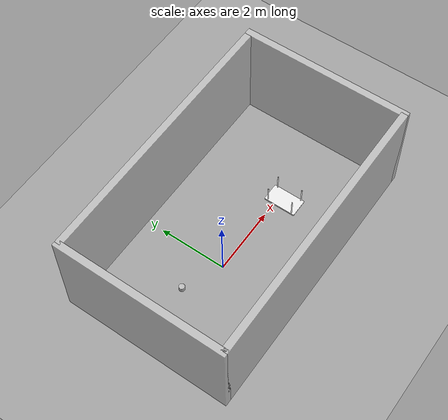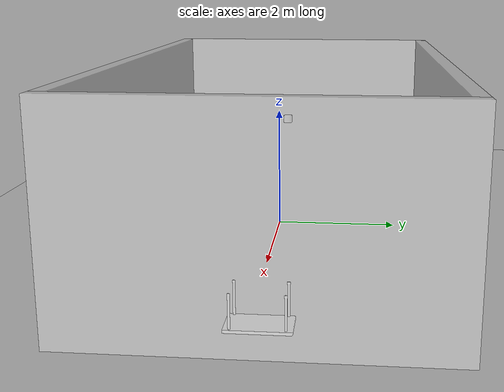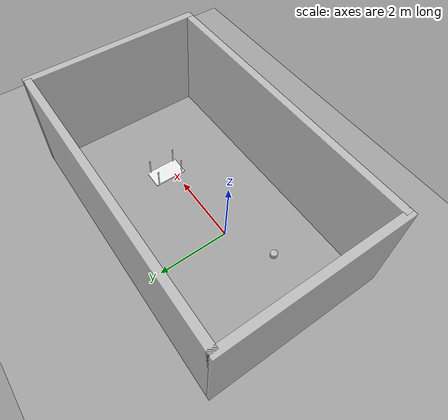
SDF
<sdf version="1.6">
 <world name="empty">
  <physics name="1ms" type="ignored">
   <max_step_size>0.001</max_step_size>
   <real_time_factor>1.0</real_time_factor>
  </physics>
  <plugin filename="gz-sim-physics-system" name="gz::sim::systems::Physics"/>
  <plugin filename="gz-sim-user-commands-system" name="gz::sim::systems::UserCommands"/>
  <plugin filename="gz-sim-scene-broadcaster-system" name="gz::sim::systems::SceneBroadcaster"/>
  <plugin filename="gz-sim-contact-system" name="gz::sim::systems::Contact"/>
  <plugin filename="libgz-sim-sensors-system.so" name="gz::sim::systems::Sensors">
   <render_engine>ogre2</render_engine>
  </plugin>
  <include><name>ground_plane</name><uri>gp_models/ground.sdf</uri></include>
  <include><name>light_model</name><uri>gp_models/light_model.sdf</uri></include>
  <include><name>lidar_module</name><uri>gp_models/lidar_module.sdf</uri><pose>-1.7 0 1.5 0 0 0</pose></include>
  <include><name>table_1</name><uri>gp_models/reflective_table/table.sdf</uri><pose>3 0 0 0 0 0</pose></include>
  <include><name>walls</name><uri>gp_models/walls.sdf</uri><pose>1 0.2 1.5 0 0 0</pose></include>
 </world>
</sdf>

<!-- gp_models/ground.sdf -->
<sdf version="1.6">
	<model name="ground_plane">
		<static>true</static>
		<link name="link">
			<collision name="collision">
				<geometry>
					<plane>
						<normal>0 0 1</normal>
						<size>100 100</size>
					</plane>
				</geometry>
			</collision>
			<visual name="visual">
				<geometry>
					<plane>
						<normal>0 0 1</normal>
						<size>100 100</size>
					</plane>
				</geometry>
					<material>
						<ambient>0.8 0.8 0.8 1</ambient>
						<diffuse>0.8 0.8 0.8 1</diffuse>
						<specular>0.8 0.8 0.8 1</specular>
					</material>
			</visual>
		</link>
	</model>
</sdf>

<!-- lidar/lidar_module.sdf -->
<sdf version="1.6">
	<model name="lidar_module">
		<static>true</static>
		<link name="lidar_frame">
			<sensor name='gpu_lidar' type='gpu_lidar'>
				<pose>0 0 0 0 0 0</pose>
				<topic>lidar</topic>
				<update_rate>10</update_rate>
				<ray>
					<scan>
						<horizontal>
						    <samples>1024</samples>
						    <min_angle>0.0</min_angle>
						    <max_angle>6.2831</max_angle>
						</horizontal>
						<vertical>
						    <samples>64</samples>
						    <min_angle>-0.2897</min_angle>
						    <max_angle>0.2897</max_angle>
						</vertical>
					</scan>
					<range>
						<min>0.08</min>
						<max>100</max>
					</range>
					<noise>
						<type>gaussian</type>
						<mean>0.0</mean>
						<stddev>0.03</stddev>
					 </noise>
				</ray>
				<always_on>1</always_on>
				<visualize>true</visualize>
			</sensor>
			<visual name="lidar_visual">
				<geometry>
					<mesh>
				 		<uri>lidar_3d_v2.dae</uri>
				 	</mesh>
				 </geometry>
			</visual>
		</link>
	</model>
</sdf>

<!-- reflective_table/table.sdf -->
<sdf version="1.6">
    <model name="reflective_table">
        <static>true</static>
        <link name="link">
            <pose>0 0 0 0 3.14 0</pose>
            <collision name="collision">
                <geometry>
                    <mesh>
                        <scale>0.5 0.5 0.5</scale>
                        <uri>meshes/Table.dae</uri>
                    </mesh>
                </geometry>
            </collision>
            <visual name="visual">
                <geometry>
                    <mesh>
                        <scale>0.5 0.5 0.5</scale>
                        <uri>meshes/Table.dae</uri>
                    </mesh>
                </geometry>
                <material>
                    <diffuse>1.0 1.0 1.0</diffuse>
                    <specular>1.0 1.0 1.0</specular>
                    <pbr>
                        <metal>
                            <albedo_map>materials/textures/Table_Table_BaseColor.png</albedo_map>
                            <normal_map>materials/textures/Table_Table_Normal.png</normal_map>
                            <roughness_map>materials/textures/Table_Roughness.png</roughness_map>
                            <environment_map>materials/textures/DepotEnvMap.dds</environment_map>
                            <metalness>0.1</metalness>
                        </metal>
                    </pbr>
                </material>
            </visual>
        </link>
    </model>
</sdf>

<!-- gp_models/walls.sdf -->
<sdf version="1.6">
	<model name="walls">
		<static>true</static>
		<pose>0 0 1.5 0 0 0</pose>
		<link name="north_wall">
			<pose>4 0 0 0 0 0</pose>
			<collision name="collision">
				<geometry>
					<box>
            			<size>0.2 5 3</size>
          			</box>
				</geometry>
			</collision>
			<visual name="visual">
				<geometry>
					<box>
            			<size>0.2 5 3</size>
          			</box>
				</geometry>
					<material>
						<ambient>0.8 0.8 0.8 1</ambient>
						<diffuse>0.8 0.8 0.8 1</diffuse>
						<specular>0.8 0.8 0.8 1</specular>
					</material>
					<transparency>0.2</transparency>
			</visual>
		</link>
		<link name="south_wall">
			<pose>-4 0 0 0 0 0</pose>
			<collision name="collision">
				<geometry>
					<box>
            			<size>0.2 5 3</size>
          			</box>
				</geometry>
			</collision>
			<visual name="visual">
				<geometry>
					<box>
            			<size>0.2 5 3</size>
          			</box>
				</geometry>
					<material>
						<ambient>0.8 0.8 0.8 1</ambient>
						<diffuse>0.8 0.8 0.8 1</diffuse>
						<specular>0.8 0.8 0.8 1</specular>
					</material>
					<transparency>0.2</transparency>
			</visual>
		</link>

		<link name="east_wall">
			<pose>0 -2.4 0 0 0 0</pose>
			<collision name="collision">
				<geometry>
					<box>
            			<size>7.1 0.2 3</size>
          			</box>
				</geometry>
			</collision>
			<visual name="visual">
				<geometry>
					<box>
            			<size>8 0.2 3</size>
          			</box>
				</geometry>
					<material>
						<ambient>0.8 0.8 0.8 1</ambient>
						<diffuse>0.8 0.8 0.8 1</diffuse>
						<specular>0.8 0.8 0.8 1</specular>
					</material>
					<transparency>0.2</transparency>
			</visual>
		</link>

		<link name="west_wall">
			<pose>0 2.4 0 0 0 0</pose>
			<collision name="collision">
				<geometry>
					<box>
            			<size>7.1 0.2 3</size>
          			</box>
				</geometry>
			</collision>
			<visual name="visual">
				<geometry>
					<box>
            			<size>8 0.2 3</size>
          			</box>
				</geometry>
					<material>
						<ambient>0.8 0.8 0.8 1</ambient>
						<diffuse>0.8 0.8 0.8 1</diffuse>
						<specular>0.8 0.8 0.8 1</specular>
					</material>
					<transparency>0.2</transparency>

			</visual>
		</link>
	</model>
</sdf>
